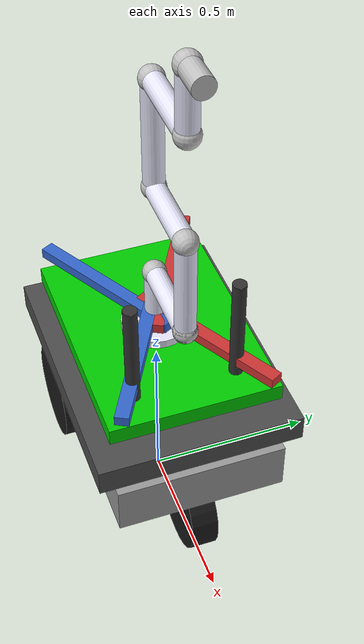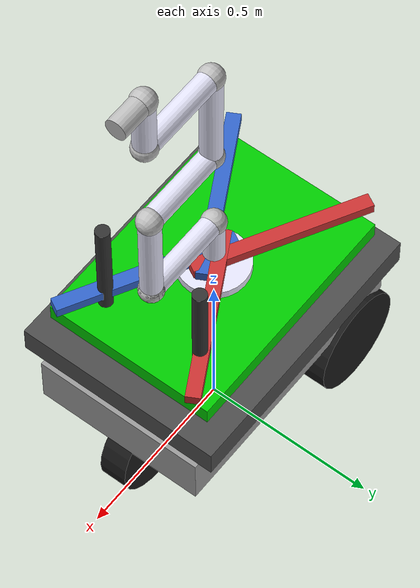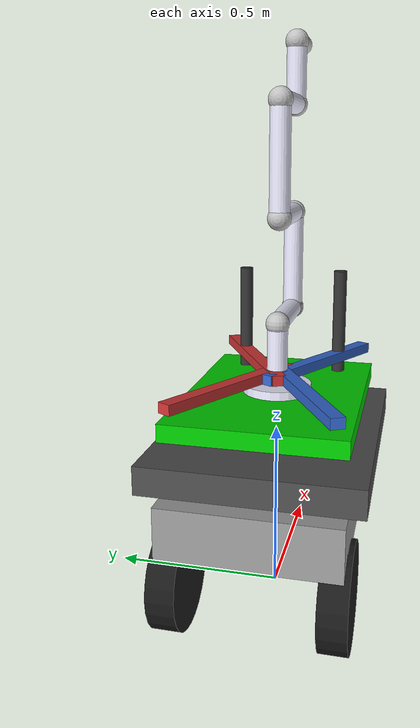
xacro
<?xml version="1.0"?>
<robot name="mobile_lift_arm"
  xmlns:xi="http://www.w3.org/2001/XInclude" xmlns:xacro="http://www.ros.org/wiki/xacro">

  <xacro:include filename="$(find mobile_lift_arm)/urdf/base_vehicle.xacro"/>
  <xacro:include filename="$(find mobile_lift_arm)/urdf/scissor_lift.xacro"/>
  <xacro:include filename="$(find mobile_lift_arm)/urdf/robot_arm.xacro"/>

  <!-- Base -->
  <xacro:base_vehicle/>

  <!-- Lift mounted on base_link -->
  <xacro:scissor_lift parent="base_link"/>

  <!-- Arm mounted on lift_top_link -->
  <xacro:robot_arm parent="lift_top_link"/>

  <!-- ros2_control definition -->
  <ros2_control name="mobile_lift_arm_system" type="system">
    <hardware>
      <plugin>gazebo_ros2_control/GazeboSystem</plugin>
    </hardware>

    <!-- Mobile base wheels -->
    <joint name="front_wheel_joint">
      <command_interface name="velocity">
        <param name="min">-10</param>
        <param name="max">10</param>
      </command_interface>
      <state_interface name="position"/>
      <state_interface name="velocity"/>
    </joint>

    <joint name="left_rear_wheel_joint">
      <command_interface name="velocity">
        <param name="min">-10</param>
        <param name="max">10</param>
      </command_interface>
      <state_interface name="position"/>
      <state_interface name="velocity"/>
    </joint>

    <joint name="right_rear_wheel_joint">
      <command_interface name="velocity">
        <param name="min">-10</param>
        <param name="max">10</param>
      </command_interface>
      <state_interface name="position"/>
      <state_interface name="velocity"/>
    </joint>

    <!-- Steering joint -->
    <joint name="front_steer_joint">
      <command_interface name="position">
        <param name="min">-0.7854</param>
        <param name="max">0.7854</param>
      </command_interface>
      <state_interface name="position"/>
      <state_interface name="velocity"/>
    </joint>

    <!-- Lift joint -->
    <joint name="lift_joint">
      <command_interface name="position">
        <param name="min">0.0</param>
        <param name="max">1.2</param>
      </command_interface>
      <state_interface name="position"/>
      <state_interface name="velocity"/>
    </joint>

    <!-- Arm joints -->
    <joint name="arm_shoulder_yaw_joint">
      <command_interface name="position">
        <param name="min">-3.14159</param>
        <param name="max">3.14159</param>
      </command_interface>
      <state_interface name="position"/>
      <state_interface name="velocity"/>
    </joint>

    <joint name="arm_shoulder_pitch_joint">
      <command_interface name="position">
        <param name="min">-1.5708</param>
        <param name="max">1.5708</param>
      </command_interface>
      <state_interface name="position"/>
      <state_interface name="velocity"/>
    </joint>

    <joint name="arm_shoulder_roll_joint">
      <command_interface name="position">
        <param name="min">-1.5708</param>
        <param name="max">1.5708</param>
      </command_interface>
      <state_interface name="position"/>
      <state_interface name="velocity"/>
    </joint>

    <joint name="arm_elbow_pitch_joint">
      <command_interface name="position">
        <param name="min">-1.5708</param>
        <param name="max">1.5708</param>
      </command_interface>
      <state_interface name="position"/>
      <state_interface name="velocity"/>
    </joint>

    <joint name="arm_wrist_pitch_joint">
      <command_interface name="position">
        <param name="min">-1.5708</param>
        <param name="max">1.5708</param>
      </command_interface>
      <state_interface name="position"/>
      <state_interface name="velocity"/>
    </joint>

    <joint name="arm_wrist_roll_joint">
      <command_interface name="position">
        <param name="min">-3.14159</param>
        <param name="max">3.14159</param>
      </command_interface>
      <state_interface name="position"/>
      <state_interface name="velocity"/>
    </joint>
  </ros2_control>

  <!-- Gazebo ros2_control plugin -->
  <gazebo>
    <plugin filename="libgazebo_ros2_control.so" name="gazebo_ros2_control">
      <parameters>$(find mobile_lift_arm)/config/ros2_controllers.yaml</parameters>
    </plugin>
  </gazebo>

</robot>

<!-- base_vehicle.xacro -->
<robot xmlns:xacro="http://www.ros.org/wiki/xacro" name="tricycle_base">

  <!-- Dimensions and parameters -->
  <xacro:property name="BASE_LENGTH" value="0.8"/>   <!-- body length (x) -->
  <xacro:property name="BASE_WIDTH"  value="0.5"/>   <!-- body width (y) -->
  <xacro:property name="BASE_HEIGHT" value="0.15"/>  <!-- body height (z) -->
  <xacro:property name="WHEEL_RADIUS" value="0.15"/>
  <xacro:property name="WHEEL_THICK"  value="0.08"/>
  <xacro:property name="CLEARANCE"    value="0.18"/> <!-- ground clearance -->

  <!-- Tricycle specific parameters -->
  <xacro:property name="REAR_WHEEL_SEPARATION" value="${BASE_WIDTH * 0.9}"/>  <!-- Distance between rear wheels -->
  <xacro:property name="WHEELBASE" value="${BASE_LENGTH * 0.7}"/>            <!-- Distance from front to rear axle -->
  <xacro:property name="FRONT_WHEEL_OFFSET" value="${WHEELBASE/2}"/>          <!-- Front wheel position -->
  <xacro:property name="REAR_WHEEL_OFFSET" value="${-WHEELBASE/2}"/>          <!-- Rear wheels position -->

  <!-- Steering limits -->
  <xacro:property name="MAX_STEER_ANGLE" value="1.0472"/>  <!-- 60 degrees in radians -->

  <!-- Mass properties -->
  <xacro:property name="M_BASE"  value="35.0"/>
  <xacro:property name="M_WHEEL" value="3.5"/>
  <xacro:property name="M_STEER" value="1.0"/>  <!-- Steering assembly mass -->

  <!-- Inertia calculations -->
  <xacro:property name="Ixx_base" value="${(M_BASE/12.0) * (BASE_WIDTH*BASE_WIDTH + BASE_HEIGHT*BASE_HEIGHT)}"/>
  <xacro:property name="Iyy_base" value="${(M_BASE/12.0) * (BASE_LENGTH*BASE_LENGTH + BASE_HEIGHT*BASE_HEIGHT)}"/>
  <xacro:property name="Izz_base" value="${(M_BASE/12.0) * (BASE_LENGTH*BASE_LENGTH + BASE_WIDTH*BASE_WIDTH)}"/>

  <!-- Wheel inertias -->
  <xacro:property name="Ixx_w" value="${(M_WHEEL/12.0) * (3*WHEEL_RADIUS*WHEEL_RADIUS + WHEEL_THICK*WHEEL_THICK)}"/>
  <xacro:property name="Iyy_w" value="${(M_WHEEL/2.0)  * (WHEEL_RADIUS*WHEEL_RADIUS)}"/>
  <xacro:property name="Izz_w" value="${(M_WHEEL/12.0) * (3*WHEEL_RADIUS*WHEEL_RADIUS + WHEEL_THICK*WHEEL_THICK)}"/>

  <!-- Steering assembly inertia (small cylinder) -->
  <xacro:property name="Ixx_s" value="${(M_STEER/12.0) * (3*0.02*0.02 + 0.1*0.1)}"/>
  <xacro:property name="Iyy_s" value="${(M_STEER/2.0) * (0.02*0.02)}"/>
  <xacro:property name="Izz_s" value="${(M_STEER/12.0) * (3*0.02*0.02 + 0.1*0.1)}"/>

  <xacro:macro name="base_vehicle" params="">

    <!-- Standard floor frame -->
    <link name="base_footprint"/>
    <joint name="base_footprint_joint" type="fixed">
      <parent link="base_footprint"/>
      <child  link="base_link"/>
      <origin xyz="0 0 ${BASE_HEIGHT/2 + CLEARANCE}" rpy="0 0 0"/>
    </joint>

    <!-- Vehicle body -->
    <link name="base_link">
      <inertial>
        <origin xyz="0 0 ${BASE_HEIGHT/2}" rpy="0 0 0"/>
        <mass value="${M_BASE}"/>
        <inertia ixx="${Ixx_base}" iyy="${Iyy_base}" izz="${Izz_base}" ixy="0" ixz="0" iyz="0"/>
      </inertial>

      <visual>
        <origin xyz="0 0 ${BASE_HEIGHT/2}" rpy="0 0 0"/>
        <geometry>
          <box size="${BASE_LENGTH} ${BASE_WIDTH} ${BASE_HEIGHT}"/>
        </geometry>
        <material name="base_grey"><color rgba="0.6 0.6 0.6 1"/></material>
      </visual>

      <collision>
        <origin xyz="0 0 ${BASE_HEIGHT/2}" rpy="0 0 0"/>
        <geometry>
          <box size="${BASE_LENGTH} ${BASE_WIDTH} ${BASE_HEIGHT}"/>
        </geometry>
        <surface>
          <friction>
            <ode>
              <mu>0.8</mu>
              <mu2>0.8</mu2>
            </ode>
          </friction>
        </surface>
      </collision>
    </link>

    <!-- LEFT REAR WHEEL -->
    <link name="left_rear_wheel_link">
      <inertial>
        <origin xyz="0 0 0" rpy="0 0 0"/>
        <mass value="${M_WHEEL}"/>
        <inertia ixx="${Ixx_w}" iyy="${Iyy_w}" izz="${Izz_w}" ixy="0" ixz="0" iyz="0"/>
      </inertial>

      <visual>
        <origin xyz="0 0 0" rpy="1.5708 0 0"/>
        <geometry>
          <cylinder radius="${WHEEL_RADIUS}" length="${WHEEL_THICK}"/>
        </geometry>
        <material name="wheel_black"><color rgba="0.1 0.1 0.1 1"/></material>
      </visual>

      <collision>
        <origin xyz="0 0 0" rpy="1.5708 0 0"/>
        <geometry>
          <cylinder radius="${WHEEL_RADIUS}" length="${WHEEL_THICK}"/>
        </geometry>
        <surface>
          <friction>
            <ode>
              <mu>1.5</mu>
              <mu2>1.5</mu2>
            </ode>
          </friction>
        </surface>
      </collision>
    </link>

    <!-- RIGHT REAR WHEEL -->
    <link name="right_rear_wheel_link">
      <inertial>
        <origin xyz="0 0 0" rpy="0 0 0"/>
        <mass value="${M_WHEEL}"/>
        <inertia ixx="${Ixx_w}" iyy="${Iyy_w}" izz="${Izz_w}" ixy="0" ixz="0" iyz="0"/>
      </inertial>

      <visual>
        <origin xyz="0 0 0" rpy="1.5708 0 0"/>
        <geometry>
          <cylinder radius="${WHEEL_RADIUS}" length="${WHEEL_THICK}"/>
        </geometry>
        <material name="wheel_black"/>
      </visual>

      <collision>
        <origin xyz="0 0 0" rpy="1.5708 0 0"/>
        <geometry>
          <cylinder radius="${WHEEL_RADIUS}" length="${WHEEL_THICK}"/>
        </geometry>
        <surface>
          <friction>
            <ode>
              <mu>1.5</mu>
              <mu2>1.5</mu2>
            </ode>
          </friction>
        </surface>
      </collision>
    </link>

    <!-- FRONT STEERING ASSEMBLY -->
    <link name="front_steer_link">
      <inertial>
        <origin xyz="0 0 0" rpy="0 0 0"/>
        <mass value="${M_STEER}"/>
        <inertia ixx="${Ixx_s}" iyy="${Iyy_s}" izz="${Izz_s}" ixy="0" ixz="0" iyz="0"/>
      </inertial>

      <visual>
        <origin xyz="0 0 0" rpy="0 0 0"/>
        <geometry>
          <cylinder radius="0.02" length="0.1"/>
        </geometry>
        <material name="steer_red"><color rgba="0.8 0.1 0.1 1"/></material>
      </visual>

      <collision>
        <origin xyz="0 0 0" rpy="0 0 0"/>
        <geometry>
          <cylinder radius="0.02" length="0.1"/>
        </geometry>
      </collision>
    </link>

    <!-- FRONT WHEEL -->
    <link name="front_wheel_link">
      <inertial>
        <origin xyz="0 0 0" rpy="0 0 0"/>
        <mass value="${M_WHEEL}"/>
        <inertia ixx="${Ixx_w}" iyy="${Iyy_w}" izz="${Izz_w}" ixy="0" ixz="0" iyz="0"/>
      </inertial>

      <visual>
        <origin xyz="0 0 0" rpy="1.5708 0 0"/>
        <geometry>
          <cylinder radius="${WHEEL_RADIUS}" length="${WHEEL_THICK}"/>
        </geometry>
        <material name="wheel_black"/>
      </visual>

      <collision>
        <origin xyz="0 0 0" rpy="1.5708 0 0"/>
        <geometry>
          <cylinder radius="${WHEEL_RADIUS}" length="${WHEEL_THICK}"/>
        </geometry>
        <surface>
          <friction>
            <ode>
              <mu>1.2</mu>
              <mu2>1.2</mu2>
            </ode>
          </friction>
        </surface>
      </collision>
    </link>

    <!-- REAR WHEEL JOINTS - Continuous rotation -->
    <joint name="left_rear_wheel_joint" type="continuous">
      <parent link="base_link"/>
      <child  link="left_rear_wheel_link"/>
      <origin xyz="${REAR_WHEEL_OFFSET} ${REAR_WHEEL_SEPARATION/2} -${BASE_HEIGHT/2 + CLEARANCE - WHEEL_RADIUS}" rpy="0 0 0"/>
      <axis xyz="0 1 0"/>
      <limit effort="15" velocity="25"/>
      <dynamics damping="0.2" friction="0.1"/>
    </joint>

    <joint name="right_rear_wheel_joint" type="continuous">
      <parent link="base_link"/>
      <child  link="right_rear_wheel_link"/>
      <origin xyz="${REAR_WHEEL_OFFSET} -${REAR_WHEEL_SEPARATION/2} -${BASE_HEIGHT/2 + CLEARANCE - WHEEL_RADIUS}" rpy="0 0 0"/>
      <axis xyz="0 1 0"/>
      <limit effort="15" velocity="25"/>
      <dynamics damping="0.2" friction="0.1"/>
    </joint>
    <!-- FRONT STEERING JOINT - Revolute with limits -->
    <joint name="front_steer_joint" type="revolute">
      <parent link="base_link"/>
      <child  link="front_steer_link"/>
      <origin xyz="${FRONT_WHEEL_OFFSET} 0 -${BASE_HEIGHT/2 + CLEARANCE - WHEEL_RADIUS}" rpy="0 0 0"/>
      <axis xyz="0 0 1"/>
      <limit lower="-${MAX_STEER_ANGLE}" upper="${MAX_STEER_ANGLE}" effort="10" velocity="2"/>
      <dynamics damping="0.5" friction="0.2"/>
    </joint>
    <!-- FRONT WHEEL JOINT - Continuous rotation, mounted on steering assembly -->
    <joint name="front_wheel_joint" type="continuous">
      <parent link="front_steer_link"/>
      <child  link="front_wheel_link"/>
      <origin xyz="0 0 0" rpy="0 0 0"/>
      <axis xyz="0 1 0"/>
      <limit effort="10" velocity="20"/>
      <dynamics damping="0.1" friction="0.05"/>
    </joint>

  </xacro:macro>
</robot>

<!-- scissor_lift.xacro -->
<robot xmlns:xacro="http://www.ros.org/wiki/xacro">

  <!-- Include macros for inertia -->
  <xacro:include filename="$(find mobile_lift_arm)/urdf/scissor_lift_macros.xacro"/>

  <!-- Parameters - Optimized for mobile platform -->
  <xacro:property name="LIFT_MIN" value="0.0"/>
  <xacro:property name="LIFT_MAX" value="1.2"/>
  <xacro:property name="base_length" value="0.8"/>
  <xacro:property name="base_width" value="0.6"/>
  <xacro:property name="base_height" value="0.08"/>
  <xacro:property name="scissor_arm_length" value="0.5"/>
  <xacro:property name="scissor_arm_width" value="0.04"/>
  <xacro:property name="scissor_arm_height" value="0.03"/>
  <xacro:property name="platform_length" value="0.7"/>
  <xacro:property name="platform_width" value="0.5"/>
  <xacro:property name="platform_height" value="0.05"/>

  <xacro:macro name="scissor_lift" params="parent">

    <!-- Scissor mechanism base platform -->
    <link name="scissor_base">
      <visual>
        <origin xyz="0 0 ${base_height/2}" rpy="0 0 0"/>
        <geometry><box size="${base_length} ${base_width} ${base_height}"/></geometry>
        <material name="dark_grey"><color rgba="0.3 0.3 0.3 1"/></material>
      </visual>
      <collision>
        <origin xyz="0 0 ${base_height/2}" rpy="0 0 0"/>
        <geometry><box size="${base_length} ${base_width} ${base_height}"/></geometry>
      </collision>
      <xacro:box_inertia m="5" x="${base_length}" y="${base_width}" z="${base_height}"/>
    </link>

    <!-- Mount scissor base DIRECTLY on top of the vehicle base -->
    <joint name="scissor_base_joint" type="fixed">
      <parent link="${parent}"/>
      <child link="scissor_base"/>
      <origin xyz="0 0 0.18" rpy="0 0 0"/>
    </joint>

    <!-- Visual Scissor Arms positioned correctly -->
    <link name="left_scissor_arm">
      <visual>
        <origin xyz="0 0 0" rpy="0 0 0.5"/>
        <geometry><box size="${scissor_arm_length} ${scissor_arm_width} ${scissor_arm_height}"/></geometry>
        <material name="blue"><color rgba="0.2 0.4 0.8 1"/></material>
      </visual>
      <collision>
        <origin xyz="0 0 0" rpy="0 0 0.5"/>
        <geometry><box size="${scissor_arm_length} ${scissor_arm_width} ${scissor_arm_height}"/></geometry>
      </collision>
      <xacro:box_inertia m="1" x="${scissor_arm_length}" y="${scissor_arm_width}" z="${scissor_arm_height}"/>
    </link>

    <joint name="left_scissor_joint" type="fixed">
      <parent link="scissor_base"/>
      <child link="left_scissor_arm"/>
      <origin xyz="-0.15 -0.1 ${base_height + 0.15}" rpy="0 0 0"/>
    </joint>

    <!-- Right scissor arm -->
    <link name="right_scissor_arm">
      <visual>
        <origin xyz="0 0 0" rpy="0 0 -0.5"/>
        <geometry><box size="${scissor_arm_length} ${scissor_arm_width} ${scissor_arm_height}"/></geometry>
        <material name="red"><color rgba="0.8 0.2 0.2 1"/></material>
      </visual>
      <collision>
        <origin xyz="0 0 0" rpy="0 0 -0.5"/>
        <geometry><box size="${scissor_arm_length} ${scissor_arm_width} ${scissor_arm_height}"/></geometry>
      </collision>
      <xacro:box_inertia m="1" x="${scissor_arm_length}" y="${scissor_arm_width}" z="${scissor_arm_height}"/>
    </link>

    <joint name="right_scissor_joint" type="fixed">
      <parent link="scissor_base"/>
      <child link="right_scissor_arm"/>
      <origin xyz="-0.15 0.1 ${base_height + 0.15}" rpy="0 0 0"/>
    </joint>

    <!-- Upper scissor arms -->
    <link name="upper_left_scissor_arm">
      <visual>
        <origin xyz="0 0 0" rpy="0 0 -0.5"/>
        <geometry><box size="${scissor_arm_length} ${scissor_arm_width} ${scissor_arm_height}"/></geometry>
        <material name="blue"/>
      </visual>
      <collision>
        <origin xyz="0 0 0" rpy="0 0 -0.5"/>
        <geometry><box size="${scissor_arm_length} ${scissor_arm_width} ${scissor_arm_height}"/></geometry>
      </collision>
      <xacro:box_inertia m="1" x="${scissor_arm_length}" y="${scissor_arm_width}" z="${scissor_arm_height}"/>
    </link>

    <joint name="upper_left_scissor_joint" type="fixed">
      <parent link="scissor_base"/>
      <child link="upper_left_scissor_arm"/>
      <origin xyz="0.15 -0.1 ${base_height + 0.15}" rpy="0 0 0"/>
    </joint>

    <link name="upper_right_scissor_arm">
      <visual>
        <origin xyz="0 0 0" rpy="0 0 0.5"/>
        <geometry><box size="${scissor_arm_length} ${scissor_arm_width} ${scissor_arm_height}"/></geometry>
        <material name="red"/>
      </visual>
      <collision>
        <origin xyz="0 0 0" rpy="0 0 0.5"/>
        <geometry><box size="${scissor_arm_length} ${scissor_arm_width} ${scissor_arm_height}"/></geometry>
      </collision>
      <xacro:box_inertia m="1" x="${scissor_arm_length}" y="${scissor_arm_width}" z="${scissor_arm_height}"/>
    </link>

    <joint name="upper_right_scissor_joint" type="fixed">
      <parent link="scissor_base"/>
      <child link="upper_right_scissor_arm"/>
      <origin xyz="0.15 0.1 ${base_height + 0.15}" rpy="0 0 0"/>
    </joint>

    <!-- Main Lift Platform - This moves up and down -->
    <link name="lift_link">
      <visual>
        <origin xyz="0 0 ${platform_height/2}" rpy="0 0 0"/>
        <geometry><box size="${platform_length} ${platform_width} ${platform_height}"/></geometry>
        <material name="green"><color rgba="0 0.8 0 1"/></material>
      </visual>
      <collision>
        <origin xyz="0 0 ${platform_height/2}" rpy="0 0 0"/>
        <geometry><box size="${platform_length} ${platform_width} ${platform_height}"/></geometry>
      </collision>
      <xacro:box_inertia m="8" x="${platform_length}" y="${platform_width}" z="${platform_height}"/>
    </link>

    <!-- Main lift joint - This is controlled by the position controller -->
    <joint name="lift_joint" type="prismatic">
      <parent link="scissor_base"/>
      <child link="lift_link"/>
      <origin xyz="0 0 ${base_height + 0.05}" rpy="0 0 0"/>
      <axis xyz="0 0 1"/>
      <limit lower="${LIFT_MIN}" upper="${LIFT_MAX}" effort="2000" velocity="0.5"/>
      <dynamics damping="10.0" friction="0.2"/>
    </joint>

    <!-- Hydraulic cylinders for visual effect -->
    <link name="hydraulic_cylinder_1">
      <visual>
        <origin xyz="0 0 0" rpy="0 0 0"/>
        <geometry><cylinder length="0.4" radius="0.02"/></geometry>
        <material name="black"><color rgba="0.2 0.2 0.2 1"/></material>
      </visual>
      <collision>
        <origin xyz="0 0 0" rpy="0 0 0"/>
        <geometry><cylinder length="0.4" radius="0.02"/></geometry>
      </collision>
      <xacro:cylinder_inertia m="1" r="0.02" l="0.4"/>
    </link>

    <joint name="cylinder_1_joint" type="fixed">
      <parent link="scissor_base"/>
      <child link="hydraulic_cylinder_1"/>
      <origin xyz="0.25 -0.15 0.3" rpy="0 0 0"/>
    </joint>

    <link name="hydraulic_cylinder_2">
      <visual>
        <origin xyz="0 0 0" rpy="0 0 0"/>
        <geometry><cylinder length="0.4" radius="0.02"/></geometry>
        <material name="black"/>
      </visual>
      <collision>
        <origin xyz="0 0 0" rpy="0 0 0"/>
        <geometry><cylinder length="0.4" radius="0.02"/></geometry>
      </collision>
      <xacro:cylinder_inertia m="1" r="0.02" l="0.4"/>
    </link>

    <joint name="cylinder_2_joint" type="fixed">
      <parent link="scissor_base"/>
      <child link="hydraulic_cylinder_2"/>
      <origin xyz="0.25 0.15 0.3" rpy="0 0 0"/>
    </joint>

    <!-- Top attachment point for robot arm -->
    <link name="lift_top_link"/>
    <joint name="lift_top_fixed" type="fixed">
      <parent link="lift_link"/>
      <child link="lift_top_link"/>
      <origin xyz="0 0 ${platform_height}" rpy="0 0 0"/>
    </joint>

    <!-- Gazebo materials -->
    <gazebo reference="lift_link"><material>Gazebo/Green</material></gazebo>
    <gazebo reference="scissor_base"><material>Gazebo/Grey</material></gazebo>
    <gazebo reference="left_scissor_arm"><material>Gazebo/Blue</material></gazebo>
    <gazebo reference="right_scissor_arm"><material>Gazebo/Red</material></gazebo>
    <gazebo reference="upper_left_scissor_arm"><material>Gazebo/Blue</material></gazebo>
    <gazebo reference="upper_right_scissor_arm"><material>Gazebo/Red</material></gazebo>
    <gazebo reference="hydraulic_cylinder_1"><material>Gazebo/Black</material></gazebo>
    <gazebo reference="hydraulic_cylinder_2"><material>Gazebo/Black</material></gazebo>

    <!-- Friction settings -->
    <gazebo reference="lift_link">
      <mu1>0.9</mu1><mu2>0.9</mu2>
    </gazebo>

  </xacro:macro>

</robot>

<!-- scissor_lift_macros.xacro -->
<robot xmlns:xacro="http://www.ros.org/wiki/xacro">

  <!-- Inertia macros -->
  <xacro:macro name="box_inertia" params="m x y z">
    <inertial>
      <mass value="${m}"/>
      <inertia
        ixx="${m*(y*y+z*z)/12}" ixy="0" ixz="0"
        iyy="${m*(x*x+z*z)/12}" iyz="0"
        izz="${m*(x*x+y*y)/12}"/>
    </inertial>
  </xacro:macro>

  <xacro:macro name="cylinder_inertia" params="m r l">
    <inertial>
      <mass value="${m}"/>
      <inertia
        ixx="${m*(3*r*r+l*l)/12}" ixy="0" ixz="0"
        iyy="${m*(3*r*r+l*l)/12}" iyz="0"
        izz="${m*r*r/2}"/>
    </inertial>
  </xacro:macro>

  <xacro:macro name="sphere_inertia" params="m r">
    <inertial>
      <mass value="${m}"/>
      <inertia
        ixx="${2*m*r*r/5}" ixy="0" ixz="0"
        iyy="${2*m*r*r/5}" iyz="0"
        izz="${2*m*r*r/5}"/>
    </inertial>
  </xacro:macro>

</robot>

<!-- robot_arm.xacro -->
<robot xmlns:xacro="http://www.ros.org/wiki/xacro">
  <!-- 6-DOF arm as a single reusable macro -->
  <xacro:macro name="robot_arm" params="parent">
<!-- Define gray color -->
  <material name="gray">
   <color rgba="0.75 0.75 0.75 1.0"/>
  </material>

<!-- Define silver color -->
<material name="silver">
    <color rgba="0.9 0.9 0.98 1.0"/>
</material>

<!-- Fixed Link -->
<link name="arm_base_link"></link>

<!-- Fixed Joint -->
<joint name="arm_j0" type="fixed">
    <origin xyz="0.0 0.0 0.0" rpy="0.0 0.0 0.0"/>
    <parent link="arm_base_link"/>
    <child link="arm_l0"/>
    <axis xyz="0.0 0.0 0.0"/>
    <limit lower="0.0" upper="0.0" effort="0.0" velocity="0.0"/>
</joint>

<link name="arm_l0">
    <inertial>
			<origin xyz="0.0 0.0 25e-03" rpy="0 0 0"/>
			<mass value="2e+00"/>
			<inertia
				ixx="9.3895308e-03" ixy="0.0" ixz="1.1882474e-03"
				iyx="0.0" iyy="1.4207390e-02" iyz="9.2874266e-06"
				izx="1.1882474e-04"  izy="9.2874266e-06"  izz="1.7661948e-02"/>
	</inertial>
    <visual>
        <geometry>
            <cylinder radius="0.1" length="0.05"/>
        </geometry>
        <origin xyz="0.0 0.0 0.0" rpy="0.0 0.0 0.0"/>
        <material name="silver"/>
    </visual>
</link>

<joint name="arm_shoulder_yaw_joint" type="revolute">
    <origin xyz="0.0 0.0 0.0" rpy="0.0 0.0 0.0"/>
    <parent link="arm_l0"/>
    <child link="arm_l1"/>
    <axis xyz="0.0 0.0 1.0"/>
    <limit lower="-${2*pi}" upper="${2*pi}" effort="0.0" velocity="0.0"/>
</joint>

<link name="arm_l1">
     <inertial>
			<origin xyz="0.0 0.0 +0.25" rpy="0 0 0"/>
			<mass value="1e+00"/>
			<inertia
            ixx="1.3778118e-01" ixy="5.1395441e-06" ixz="2.1163457e-04"
            iyx="5.1395441e-06" iyy="1.3826689e-01" iyz="1.1751288e-02"
            izx="2.1163457e-04" izy="1.1751288e-02" izz="3.5020186e-02"/>
	</inertial>
    <visual>
        <geometry>
            <cylinder radius="0.03" length="0.2"/>
        </geometry>
        <origin xyz="0.0 0.0 0.1" rpy="0.0 0.0 0.0"/>
        <material name="silver"/>
    </visual>
    <!-- Add a sphere to create a curved joint -->
    <visual>
      <geometry>
        <sphere radius="0.035"/>
      </geometry>
      <origin xyz="0.0 0.0 0.2" rpy="0.0 0.0 0.0"/>
      <material name="gray"/>
    </visual>
</link>

<!-- Dummy Joint -->
<joint name="arm_j_dummy_1_2" type="fixed">
    <origin xyz="0.0 0.0 0.2" rpy="0.0 0.0 0.0"/>
    <parent link="arm_l1"/>
    <child link="arm_l2"/>
</joint>

<link name="arm_l2">
     <inertial>
			<origin xyz="0.25 0.0 0.0" rpy="0 0 0"/>
			<mass value="1e+00"/>
			<inertia
				ixx="3.0406895e-01" ixy="5.6383979e-04" ixz="4.4113010e-01"
				iyx="5.6383979e-04" iyy="1.9934350e+00" iyz="1.2111129e-06"
				izx="4.4113010e-01" izy="1.2111129e-06" izz="1.7471456e+00"/>
	</inertial>
    <visual>
        <geometry>
            <cylinder radius="0.03" length="0.25"/>
        </geometry>
        <origin xyz="0.125 0.0 0.0" rpy="0.0 ${pi/2} 0.0"/>
        <material name="silver"/>
    </visual>
    <!-- Add a sphere to create a curved joint -->
    <visual>
      <geometry>
        <sphere radius="0.035"/>
      </geometry>
      <origin xyz="0.25 0.0 0.0" rpy="0.0 0.0 0.0"/>
      <material name="gray"/>
    </visual>
</link>

<joint name="arm_shoulder_pitch_joint" type="revolute">
    <origin xyz="0.25 0.0 0.0" rpy="0.0 ${pi/2} 0.0"/>
    <parent link="arm_l2"/>
    <child link="arm_l3"/>
    <axis xyz="0.0 0.0 1.0"/>
    <limit lower="${-pi/2}" upper="${pi/2}" effort="0.0" velocity="0.0"/>
</joint>

<link name="arm_l3">
     <inertial>
			<origin xyz="-0.15 0.0 0.0" rpy="0 0 0"/>
			<mass value="3e+00"/>
			<inertia
				ixx="3.1982320e-02" ixy="-1.5528529e-05" ixz="-4.8994800e-05"
				iyx="-1.5528529e-05" iyy="2.8261283e-02" iyz="7.1406845e-03"
				izx="-4.8994800e-05" izy="7.1406845e-03" izz="8.8063347e-03"/>
	</inertial>
    <visual>
        <geometry>
            <cylinder radius="0.03" length="0.3"/>
        </geometry>
        <origin xyz="-0.15 0.0 0.0 " rpy="0.0  ${pi/2} 0.0"/>
        <material name="silver"/>
    </visual>
    <!-- Add a sphere to create a curved joint -->
    <visual>
      <geometry>
        <sphere radius="0.035"/>
      </geometry>
      <origin xyz="0.0 0.0 0.0" rpy="0.0 0.0 0.0"/>
      <material name="gray"/>
    </visual>
</link>

<joint name="arm_shoulder_roll_joint" type="revolute">
    <origin xyz="-0.30 0.0 0.0" rpy="0.0 0.0 0.0"/>
    <parent link="arm_l3"/>
    <child link="arm_l4"/>
    <axis xyz="0.0 0.0 1.0"/>
    <limit lower="${-pi/2}" upper="${pi/2}" effort="0.0" velocity="0.0"/>
</joint>

<link name="arm_l4">
     <inertial>
			<origin xyz="0.0 0.0 -0.12" rpy="0 0 0"/>
			<mass value="1e+00"/>
			<inertia
				ixx="3.0406895e-01" ixy="5.6383979e-04" ixz="4.4113010e-01"
				iyx="5.6383979e-04" iyy="1.9934350e+00" iyz="1.2111129e-06"
				izx="4.4113010e-01" izy="1.2111129e-06" izz="1.7471456e+00"/>
	</inertial>
    <visual>
        <geometry>
            <cylinder radius="0.03" length="0.24"/>
        </geometry>
        <origin xyz="0.0 0.0 -0.12" rpy="0.0 0.0 0.0"/>
        <material name="silver"/>
    </visual>
    <!-- Add a sphere to create a curved joint -->
    <visual>
      <geometry>
        <sphere radius="0.035"/>
      </geometry>
      <origin xyz="0.0 0.0 0.0" rpy="0.0 0.0 0.0"/>
      <material name="gray"/>
    </visual>
</link>

<!-- Dummy Joint -->
<joint name="arm_j_dummy" type="fixed">
    <origin xyz="0.0 0.0 -0.24" rpy="0.0 0.0 0.0"/>
    <parent link="arm_l4"/>
    <child link="arm_l5"/>
</joint>

<link name="arm_l5">
     <inertial>
			<origin xyz="-0.16 0.0 0.0" rpy="0.0 0.0 0.0"/>
			<mass value="3e+00"/>
			<inertia
				ixx="1.3754675e-02" ixy="-1.5528630e-05" ixz="-2.8051809e-05"
				iyx="-1.5528630e-05" iyy="9.9916676e-03" iyz="3.9023300e-03"
				izx="-2.8051809e-05" izy="3.9023300e-03" izz="7.6137437e-03"/>
	</inertial>
    <visual>
        <geometry>
            <cylinder radius="0.03" length="0.32"/>
        </geometry>
        <origin xyz="-0.16 0.0 0.0 " rpy="0.0 ${pi/2} 0.0"/>
        <material name="silver"/>
    </visual>
    <!-- Add a sphere to create a curved joint -->
    <visual>
      <geometry>
        <sphere radius="0.035"/>
      </geometry>
      <origin xyz="0.0 0.0 0.0" rpy="0.0 0.0 0.0"/>
      <material name="gray"/>
    </visual>
</link>

<joint name="arm_elbow_pitch_joint" type="revolute">
    <origin xyz="-0.32 0.0 0.0" rpy="0.0 0.0 0.0"/>
    <parent link="arm_l5"/>
    <child link="arm_l6"/>
    <axis xyz="0.0 0.0 1.0"/>
    <limit lower="${-pi/2}" upper="${pi/2}" effort="0.0" velocity="0.0"/>
</joint>

<link name="arm_l6">
     <inertial>
			 <origin xyz="0.0 0.0 0.125" rpy="0.0 0.0 0.0"/>
			<mass value="1e+00"/>
			<inertia
				ixx="9.3016047e-04" ixy="-2.9405026e-07" ixz="1.0421409e-05"
				iyx="-2.9405026e-07" iyy="9.5021553e-04" iyz="-1.7371494e-06"
				izx="1.0421409e-05" izy="-1.7371494e-06" izz="8.4567154e-04"/>
	</inertial>
    <visual>
        <geometry>
            <cylinder radius="0.03" length="0.25"/>
        </geometry>
        <origin xyz="0.0 0.0 0.125" rpy="0.0 0.0 0.0"/>
        <material name="silver"/>
    </visual>
    <!-- Add a sphere to create a curved joint -->
    <visual>
      <geometry>
        <sphere radius="0.035"/>
      </geometry>
      <origin xyz="0.0 0.0 0.0" rpy="0.0 0.0 0.0"/>
      <material name="gray"/>
    </visual>
</link>

<joint name="arm_wrist_pitch_joint" type="revolute">
    <origin xyz="0.0 0.0 0.25" rpy="0.0 ${-pi/2} ${2*pi}"/>
    <parent link="arm_l6"/>
    <child link="arm_le"/>
    <axis xyz="0.0 0.0 1.0"/>
    <limit lower="${-pi}" upper="${pi}" effort="0.0" velocity="0.0"/>
</joint>

<link name="arm_le">
     <inertial>
			 <origin xyz="0.0 0.0 0.09" rpy="0.0 0.0 0.0"/>
			<mass value="1e+00"/>
			<inertia
				ixx="9.3016047e-04" ixy="-2.9405026e-07" ixz="1.0421409e-05"
				iyx="-2.9405026e-07" iyy="9.5021553e-04" iyz="-1.7371494e-06"
				izx="1.0421409e-05" izy="-1.7371494e-06" izz="8.4567154e-04"/>
	</inertial>
    <visual>
        <geometry>
            <cylinder radius="0.03" length="0.18"/>
        </geometry>
        <origin xyz="0.0 0.0 0.09" rpy="0.0 0.0 0.0"/>
        <material name="silver"/>
    </visual>
    <!-- Add a sphere to create a curved joint -->
    <visual>
      <geometry>
        <sphere radius="0.035"/>
      </geometry>
      <origin xyz="0.0 0.0 0.0" rpy="0.0 0.0 0.0"/>
      <material name="gray"/>
    </visual>
</link>

<joint name="arm_wrist_roll_joint" type="revolute">
    <origin xyz="0.0 0.0 0.18" rpy="0.0 ${pi/2} 0.0"/>
    <parent link="arm_le"/>
    <child link="arm_le_1"/>
    <axis xyz="0.0 0.0 1.0"/>
    <limit lower="-${2*pi}" upper="${2*pi}" effort="0.0" velocity="0.0"/>
</joint>

<link name="arm_le_1">
     <inertial>
			 <origin xyz="0.0 0.0 0.05" rpy="0.0 0.0 0.0"/>
			<mass value="1e+00"/>
			<inertia
				ixx="9.3016047e-04" ixy="-2.9405026e-07" ixz="1.0421409e-05"
				iyx="-2.9405026e-07" iyy="9.5021553e-04" iyz="-1.7371494e-06"
				izx="1.0421409e-05" izy="-1.7371494e-06" izz="8.4567154e-04"/>
	</inertial>
    <visual>
        <geometry>
            <cylinder radius="0.03" length="0.1"/>
        </geometry>
        <origin xyz="0.0 0.0 0.05 " rpy="0.0 0.0 0.0"/>
        <material name="gray"/>
    </visual>
    <!-- Add a sphere to create a curved joint -->
    <visual>
      <geometry>
        <sphere radius="0.035"/>
      </geometry>
      <origin xyz="0.0 0.0 0.0" rpy="0.0 0.0 0.0"/>
      <material name="gray"/>
    </visual>
</link>

    <!-- Mount the arm on the given parent -->
    <joint name="arm_base_mount" type="fixed">
      <parent link="${parent}"/>
      <child link="arm_base_link"/>
      <origin xyz="0 0 0" rpy="0 0 0"/>
    </joint>
  </xacro:macro>
  <gazebo reference="arm_base_link">
  <collision_name>arm_base_collision</collision_name>
  <surface>
    <contact>
      <ode>
        <max_contacts>10</max_contacts>
        <max_correcting_vel>0.1</max_correcting_vel>
      </ode>
    </contact>
  </surface>
</gazebo>

</robot>
